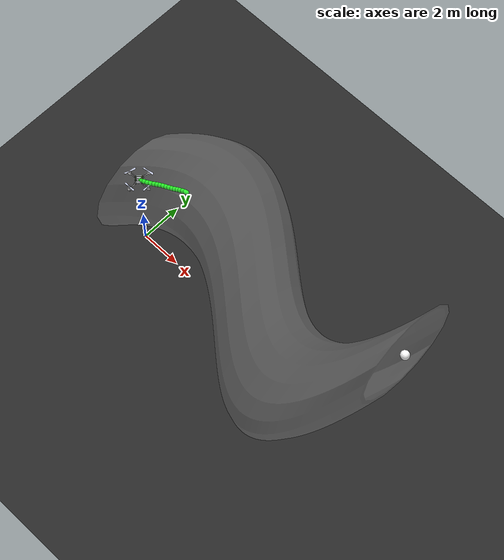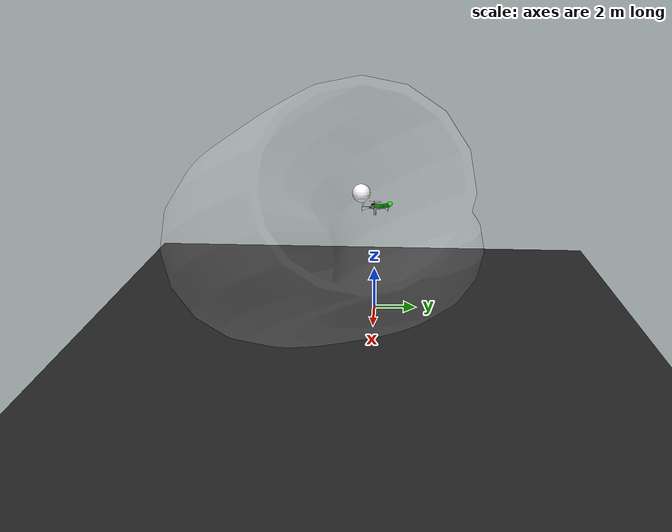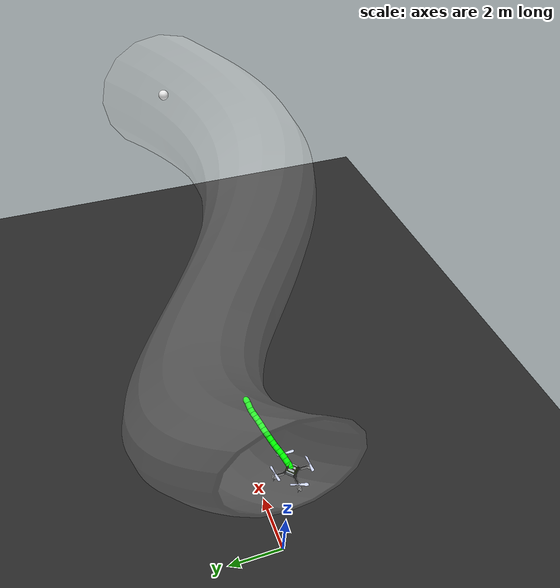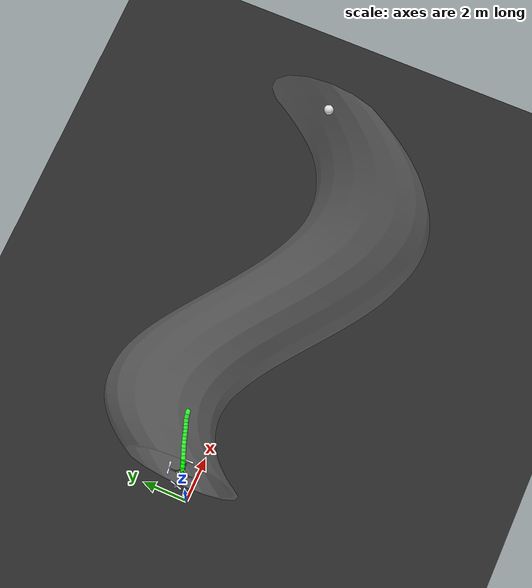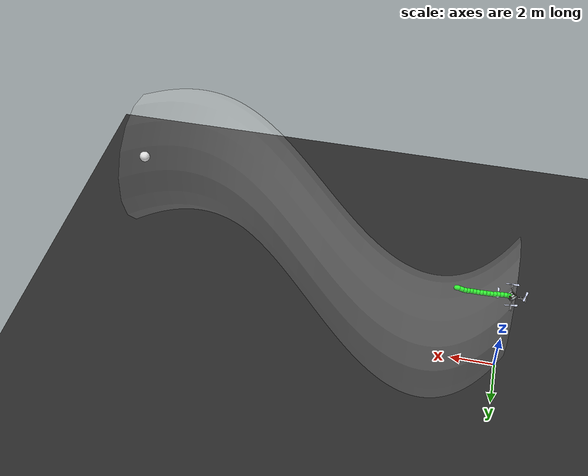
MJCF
<mujoco model="CF2 scene">
  <include file="cf2.xml" />

  <statistic center="0 0 0.1" extent="0.2" meansize=".05" />

  <visual>

    <rgba haze="0.15 0.25 0.35 0" />
    <global azimuth="-20" elevation="-20" ellipsoidinertia="true" />
    <map zfar="1000" />
  </visual>

  <asset>
    <mesh name="tunnel" file="tube_thick.obj" scale="1.0 1.0 1.0" />
    <texture type="skybox" builtin="gradient" rgb1="0.3 0.5 0.7" rgb2="0 0 0" width="512" height="3072" />

    <texture type="2d" name="groundplane" builtin="checker" mark="edge" rgb1="0.1 0.1 0.1" rgb2="0.2 0.2 0.2" markrgb="0.8 0.8 0.8" width="300" height="300" />

    <material name="groundplane" texture="groundplane" texuniform="true" texrepeat="5 5" reflectance="0.0" />
  </asset>

  <worldbody>
    <light diffuse="1 1 1" ambient="1 1 1" pos="0 0 100" dir="0 0 -1" directional="false" castshadow="false" />

    <geom name="floor" size="0 0 0.05" type="plane" material="groundplane" />
    <site name="x_axis" size="0.005" type="cylinder" fromto="0 0 0 1 0 0" rgba="1 0 0 1" />
    <site name="y_axis" size="0.005" type="cylinder" fromto="0 0 0 0 1 0" rgba="0 1 0 1" />
    <site name="z_axis" size="0.005" type="cylinder" fromto="0 0 0 0 0 1" rgba="0 0 1 1" />

    <site name="target" size="0.2" type="sphere" pos="15 0 10" rgba="1 1 1 1" />

    <camera name="cam_aux" pos="-3.429 -18.876 13.649" xyaxes="0.874 -0.486 -0.000 0.179 0.321 0.930" />
    <camera name="cam_traj_1" pos="-7.863 -0.826 23.122" xyaxes="0.020 -1.000 0.000 0.737 0.014 0.676" />
    <camera name="cam_traj_2" pos="7.041 -14.560 20.718" xyaxes="1.000 -0.031 -0.000 0.021 0.691 0.722" />
    <camera name="cam_traj_3" pos="-11.538 -0.602 8.690" xyaxes="0.046 -0.999 -0.000 0.161 0.007 0.987" />

    <body name="tunnel" pos="0.0 0.0 0.0" quat="1 0 0 0">
         <geom name="tunnel" type="mesh" mesh="tunnel" pos="-0.0 0.0 0.029" quat="1 0 0 0" rgba="1 1 1 0.05" />
    </body>

  <body name="trajectory_0" pos="0 0 0"><geom type="capsule" fromto="0.0018071721150837395 0.00035445464952582525 5.023489859848956 0.014547376717637828 0.003091979699008576 5.045566316776575" size="0.1" rgba="0 1 0.0 1" /><geom type="capsule" fromto="0.014547376717637828 0.003091979699008576 5.045566316776575 0.07661255485763852 0.019501064945579672 5.087633292239033" size="0.1" rgba="0 1 0.0 1" /><geom type="capsule" fromto="0.07661255485763852 0.019501064945579672 5.087633292239033 0.18887974983262193 0.04951837940775483 5.141485497704365" size="0.1" rgba="0 1 0.0 1" /><geom type="capsule" fromto="0.18887974983262193 0.04951837940775483 5.141485497704365 0.32683566706490963 0.08900978324353101 5.181606866577063" size="0.1" rgba="0 1 0.0 1" /><geom type="capsule" fromto="0.32683566706490963 0.08900978324353101 5.181606866577063 0.4802636348271526 0.14189108778117526 5.231036348529384" size="0.1" rgba="0 1 0.0 1" /><geom type="capsule" fromto="0.4802636348271526 0.14189108778117526 5.231036348529384 0.6274681827980678 0.2014597138442237 5.280749237322678" size="0.1" rgba="0 1 0.0 1" /><geom type="capsule" fromto="0.6274681827980678 0.2014597138442237 5.280749237322678 0.7683563957678538 0.2587981319381996 5.329568015306759" size="0.1" rgba="0 1 0.0 1" /><geom type="capsule" fromto="0.7683563957678538 0.2587981319381996 5.329568015306759 0.9087895647317337 0.3107676641331657 5.382725971753927" size="0.1" rgba="0 1 0.0 1" /><geom type="capsule" fromto="0.9087895647317337 0.3107676641331657 5.382725971753927 1.0517376318277816 0.3584811128443673 5.441341669027419" size="0.1" rgba="0 1 0.0 1" /><geom type="capsule" fromto="1.0517376318277816 0.3584811128443673 5.441341669027419 1.1890264784259343 0.40236669359767535 5.484141300055087" size="0.1" rgba="0 1 0.0 1" /><geom type="capsule" fromto="1.1890264784259343 0.40236669359767535 5.484141300055087 1.3279729111372809 0.4445765624935224 5.529318448391913" size="0.1" rgba="0 1 0.0 1" /><geom type="capsule" fromto="1.3279729111372809 0.4445765624935224 5.529318448391913 1.469741634613172 0.48392889758875224 5.581131923988946" size="0.1" rgba="0 1 0.0 1" /><geom type="capsule" fromto="1.469741634613172 0.48392889758875224 5.581131923988946 1.6028987947477733 0.5233720513969012 5.62907498968429" size="0.1" rgba="0 1 0.0 1" /><geom type="capsule" fromto="1.6028987947477733 0.5233720513969012 5.62907498968429 1.7277789410934903 0.5681704525200372 5.682561063448643" size="0.1" rgba="0 1 0.0 1" /><geom type="capsule" fromto="1.7277789410934903 0.5681704525200372 5.682561063448643 1.8481122433555568 0.6129794784314608 5.726086493330854" size="0.1" rgba="0 1 0.0 1" /><geom type="capsule" fromto="1.8481122433555568 0.6129794784314608 5.726086493330854 1.9850650757411386 0.6489786990703482 5.787360707957356" size="0.1" rgba="0 1 0.0 1" /><geom type="capsule" fromto="1.9850650757411386 0.6489786990703482 5.787360707957356 2.135480982759047 0.6715162430498381 5.877207181905166" size="0.1" rgba="0 1 0.0 1" /><geom type="capsule" fromto="2.135480982759047 0.6715162430498381 5.877207181905166 2.252908720469499 0.6890559096883304 5.899153562140846" size="0.1" rgba="0 1 0.0 1" /></body></worldbody>

  <contact>
    <exclude name="cf2_tunnel" body1="cf2" body2="tunnel" />
  </contact>

</mujoco>

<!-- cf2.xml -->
<mujoco model="cf2">
  <option integrator="RK4" density="1.225" viscosity="1.8e-5" timestep="0.1"/>

  <compiler inertiafromgeom="false" meshdir="assets" autolimits="true"/>

  <default>
    <default class="cf2">
      <default class="visual">
        <geom group="2" type="mesh" contype="0" conaffinity="0"/>
      </default>
      <default class="collision">
        <geom group="3" type="mesh"/>
      </default>
      <site group="5"/>
    </default>
  </default>

  <asset>
    <material name="polished_plastic" rgba="0.631 0.659 0.678 1"/>
    <material name="polished_gold" rgba="0.969 0.878 0.6 1"/>
    <material name="medium_gloss_plastic" rgba="0.109 0.184 0.0 1"/>
    <material name="propeller_plastic" rgba="0.792 0.820 0.933 1"/>
    <material name="white" rgba="1 1 1 1"/>
    <material name="body_frame_plastic" rgba="0.102 0.102 0.102 1"/>
    <material name="burnished_chrome" rgba="0.898 0.898 0.898 1"/>

    <mesh file="cf2_0.obj"/>
    <mesh file="cf2_1.obj"/>
    <mesh file="cf2_2.obj"/>
    <mesh file="cf2_3.obj"/>
    <mesh file="cf2_4.obj"/>
    <mesh file="cf2_5.obj"/>
    <mesh file="cf2_6.obj"/>
    <mesh file="cf2_collision_0.obj"/>
    <mesh file="cf2_collision_1.obj"/>
    <mesh file="cf2_collision_2.obj"/>
    <mesh file="cf2_collision_3.obj"/>
    <mesh file="cf2_collision_4.obj"/>
    <mesh file="cf2_collision_5.obj"/>
    <mesh file="cf2_collision_6.obj"/>
    <mesh file="cf2_collision_7.obj"/>
    <mesh file="cf2_collision_8.obj"/>
    <mesh file="cf2_collision_9.obj"/>
    <mesh file="cf2_collision_10.obj"/>
    <mesh file="cf2_collision_11.obj"/>
    <mesh file="cf2_collision_12.obj"/>
    <mesh file="cf2_collision_13.obj"/>
    <mesh file="cf2_collision_14.obj"/>
    <mesh file="cf2_collision_15.obj"/>
    <mesh file="cf2_collision_16.obj"/>
    <mesh file="cf2_collision_17.obj"/>
    <mesh file="cf2_collision_18.obj"/>
    <mesh file="cf2_collision_19.obj"/>
    <mesh file="cf2_collision_20.obj"/>
    <mesh file="cf2_collision_21.obj"/>
    <mesh file="cf2_collision_22.obj"/>
    <mesh file="cf2_collision_23.obj"/>
    <mesh file="cf2_collision_24.obj"/>
    <mesh file="cf2_collision_25.obj"/>
    <mesh file="cf2_collision_26.obj"/>
    <mesh file="cf2_collision_27.obj"/>
    <mesh file="cf2_collision_28.obj"/>
    <mesh file="cf2_collision_29.obj"/>
    <mesh file="cf2_collision_30.obj"/>
    <mesh file="cf2_collision_31.obj"/>
  </asset>

  <worldbody>
    <body name="cf2" pos="0 0.0 5.0" childclass="cf2">
      <freejoint/>
      <inertial pos="0 0 0" mass="0.1" diaginertia="1e-2 1e-2 1e-2"/>
      <camera name="track_cf2" pos="-10  0 1" fovy="60" xyaxes="0 -1 0 0 0 1" mode="trackcom"/>
      <geom mesh="cf2_0" material="propeller_plastic" class="visual"/>
      <geom mesh="cf2_1" material="medium_gloss_plastic" class="visual"/>
      <geom mesh="cf2_2" material="polished_gold" class="visual"/>
      <geom mesh="cf2_3" material="polished_plastic" class="visual"/>
      <geom mesh="cf2_4" material="burnished_chrome" class="visual"/>
      <geom mesh="cf2_5" material="body_frame_plastic" class="visual"/>
      <geom mesh="cf2_6" material="white" class="visual"/>
      <geom mesh="cf2_collision_0" class="collision"/>
      <geom mesh="cf2_collision_1" class="collision"/>
      <geom mesh="cf2_collision_2" class="collision"/>
      <geom mesh="cf2_collision_3" class="collision"/>
      <geom mesh="cf2_collision_4" class="collision"/>
      <geom mesh="cf2_collision_5" class="collision"/>
      <geom mesh="cf2_collision_6" class="collision"/>
      <geom mesh="cf2_collision_7" class="collision"/>
      <geom mesh="cf2_collision_8" class="collision"/>
      <geom mesh="cf2_collision_9" class="collision"/>
      <geom mesh="cf2_collision_10" class="collision"/>
      <geom mesh="cf2_collision_11" class="collision"/>
      <geom mesh="cf2_collision_12" class="collision"/>
      <geom mesh="cf2_collision_13" class="collision"/>
      <geom mesh="cf2_collision_14" class="collision"/>
      <geom mesh="cf2_collision_15" class="collision"/>
      <geom mesh="cf2_collision_16" class="collision"/>
      <geom mesh="cf2_collision_17" class="collision"/>
      <geom mesh="cf2_collision_18" class="collision"/>
      <geom mesh="cf2_collision_19" class="collision"/>
      <geom mesh="cf2_collision_20" class="collision"/>
      <geom mesh="cf2_collision_21" class="collision"/>
      <geom mesh="cf2_collision_22" class="collision"/>
      <geom mesh="cf2_collision_23" class="collision"/>
      <geom mesh="cf2_collision_24" class="collision"/>
      <geom mesh="cf2_collision_25" class="collision"/>
      <geom mesh="cf2_collision_26" class="collision"/>
      <geom mesh="cf2_collision_27" class="collision"/>
      <geom mesh="cf2_collision_28" class="collision"/>
      <geom mesh="cf2_collision_29" class="collision"/>
      <geom mesh="cf2_collision_30" class="collision"/>
      <geom mesh="cf2_collision_31" class="collision"/>
      <site name="imu"/>
      <site name="actuation"/>
    </body>
  </worldbody>

  <actuator>
    <motor class="cf2" gear="0 0 1 0 0 0" site="actuation" name="body_thrust"/>
    <motor class="cf2" gear="0 0 0 1 0 0" site="actuation" name="x_moment"/>
    <motor class="cf2" gear="0 0 0 0 1 0" site="actuation" name="y_moment"/>
    <motor class="cf2" gear="0 0 0 0 0 1" site="actuation" name="z_moment"/>
  </actuator>

  <sensor>
    <gyro name="body_gyro" site="imu"/>
    <accelerometer name="body_linacc" site="imu"/>
    <framequat name="body_quat" objtype="site" objname="imu"/>
  </sensor>

  <keyframe>
    <key name="hover" qpos="0 0 0.1 1 0 0 0" ctrl="0.26487 0 0 0"/>
  </keyframe>
</mujoco>
